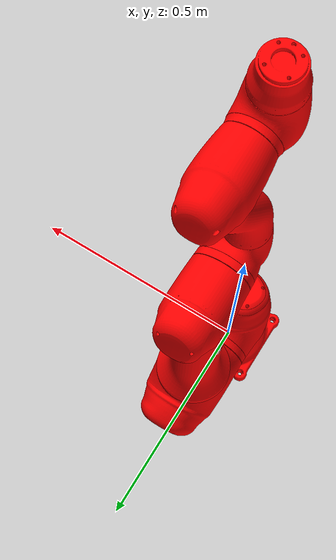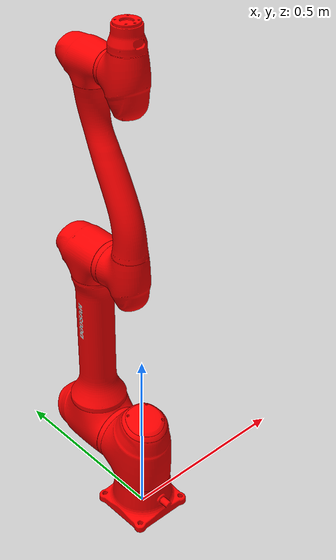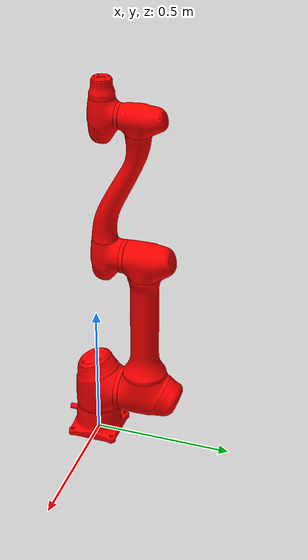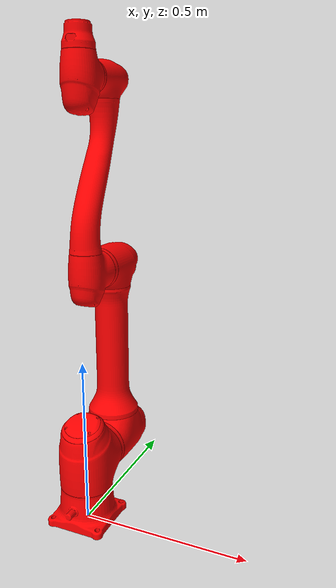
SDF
<sdf version='1.7'>
  <model name='a0912'>
    <joint name='fixed_base' type='fixed'>
      <parent>world</parent>
      <child>base</child>
    </joint>
    <link name='base'>
      <inertial>
        <pose>-1.2e-05 -6e-05 0.050723 0 -0 0</pose>
        <mass>3.722</mass>
        <inertia>
          <ixx>0.011</ixx>
          <ixy>-7.19e-06</ixy>
          <ixz>-1.94e-06</ixz>
          <iyy>0.011</iyy>
          <iyz>4.9e-06</iyz>
          <izz>0.014</izz>
        </inertia>
      </inertial>
      <visual name='base_link_visual'>
        <pose>0 0 0 0 -0 0</pose>
        <geometry>
          <mesh>
            <scale>0.001 0.001 0.001</scale>
            <uri>model://a0912/meshes/A0912_0_0.dae</uri>
          </mesh>
        </geometry>
      </visual>
    </link>
    <joint name='joint_1' type='revolute'>
      <pose relative_to='base'>0 0 0.195 0 -0 0</pose>
      <parent>base</parent>
      <child>link_1</child>
      <axis>
        <xyz>0 0 1</xyz>
        <limit>
          <lower>-2.617</lower>
          <upper>2.617</upper>
          <effort>30</effort>
          <velocity>1.571</velocity>
        </limit>
        <dynamics>
          <spring_reference>0</spring_reference>
          <spring_stiffness>0</spring_stiffness>
        </dynamics>
      </axis>
    </joint>
    <link name='link_1'>
      <pose relative_to='joint_1'>0 0 0 0 -0 0</pose>
      <inertial>
        <pose>7e-05 0.044281 0.143327 0 -0 0</pose>
        <mass>7.446</mass>
        <inertia>
          <ixx>0.039</ixx>
          <ixy>2.1e-05</ixy>
          <ixz>-3.61e-05</ixz>
          <iyy>0.023</iyy>
          <iyz>-0.003</iyz>
          <izz>0.039</izz>
        </inertia>
      </inertial>
      <visual name='link_1_visual'>
        <pose>0 0 0 0 -0 0</pose>
        <geometry>
          <mesh>
            <scale>0.001 0.001 0.001</scale>
            <uri>model://a0912/meshes/A0912_1_0.dae</uri>
          </mesh>
        </geometry>
      </visual>
      <visual name='link_1_visual_1'>
        <pose>0 0 0 0 -0 0</pose>
        <geometry>
          <mesh>
            <scale>0.001 0.001 0.001</scale>
            <uri>model://a0912/meshes/A0912_1_1.dae</uri>
          </mesh>
        </geometry>
      </visual>
      <visual name='link_1_visual_2'>
        <pose>0 0 0 0 -0 0</pose>
        <geometry>
          <mesh>
            <scale>0.001 0.001 0.001</scale>
            <uri>model://a0912/meshes/A0912_1_2.dae</uri>
          </mesh>
        </geometry>
      </visual>
    </link>
    <joint name='joint_2' type='revolute'>
      <pose relative_to='link_1'>0 0.039 0 3.14159 -1.57059 1.57059</pose>
      <parent>link_1</parent>
      <child>link_2</child>
      <axis>
        <xyz>0 0 1</xyz>
        <limit>
          <lower>-2.617</lower>
          <upper>2.617</upper>
          <effort>30</effort>
          <velocity>1.571</velocity>
        </limit>
        <dynamics>
          <spring_reference>0</spring_reference>
          <spring_stiffness>0</spring_stiffness>
        </dynamics>
      </axis>
    </joint>
    <link name='link_2'>
      <pose relative_to='joint_2'>0 0 0 0 -0 0</pose>
      <inertial>
        <pose>-1.6e-05 0.189372 0.418558 0 -0 0</pose>
        <mass>10.569</mass>
        <inertia>
          <ixx>0.82</ixx>
          <ixy>1.19e-05</ixy>
          <ixz>-0.000263</ixz>
          <iyy>0.82</iyy>
          <iyz>-0.008</iyz>
          <izz>0.031</izz>
        </inertia>
      </inertial>
      <visual name='link_2_visual'>
        <pose>0 0 0 0 -0 0</pose>
        <geometry>
          <mesh>
            <scale>0.001 0.001 0.001</scale>
            <uri>model://a0912/meshes/A0912_2_0.dae</uri>
          </mesh>
        </geometry>
      </visual>
      <visual name='link_2_visual_1'>
        <pose>0 0 0 0 -0 0</pose>
        <geometry>
          <mesh>
            <scale>0.001 0.001 0.001</scale>
            <uri>model://a0912/meshes/A0912_2_1.dae</uri>
          </mesh>
        </geometry>
      </visual>
      <visual name='link_2_visual_2'>
        <pose>0 0 0 0 -0 0</pose>
        <geometry>
          <mesh>
            <scale>0.001 0.001 0.001</scale>
            <uri>model://a0912/meshes/A0912_2_2.dae</uri>
          </mesh>
        </geometry>
      </visual>
    </link>
    <joint name='joint_3' type='revolute'>
      <pose relative_to='link_2'>0.56 0 0 0 -0 1.571</pose>
      <parent>link_2</parent>
      <child>link_3</child>
      <axis>
        <xyz>0 0 1</xyz>
        <limit>
          <lower>-2.617</lower>
          <upper>2.617</upper>
          <effort>30</effort>
          <velocity>1.571</velocity>
        </limit>
        <dynamics>
          <spring_reference>0</spring_reference>
          <spring_stiffness>0</spring_stiffness>
        </dynamics>
      </axis>
    </joint>
    <link name='link_3'>
      <pose relative_to='joint_3'>0 0 0 0 -0 0</pose>
      <inertial>
        <pose>6e-06 0.07917 0.781807 0 -0 0</pose>
        <mass>3.614</mass>
        <inertia>
          <ixx>0.012</ixx>
          <ixy>-4.38e-06</ixy>
          <ixz>-1.2e-06</ixz>
          <iyy>0.008</iyy>
          <iyz>0.002</iyz>
          <izz>0.011</izz>
        </inertia>
      </inertial>
      <visual name='link_3_visual'>
        <pose>0 0 0 0 -0 0</pose>
        <geometry>
          <mesh>
            <scale>0.001 0.001 0.001</scale>
            <uri>model://a0912/meshes/A0912_3_0.dae</uri>
          </mesh>
        </geometry>
      </visual>
      <visual name='link_3_visual_1'>
        <pose>0 0 0 0 -0 0</pose>
        <geometry>
          <mesh>
            <scale>0.001 0.001 0.001</scale>
            <uri>model://a0912/meshes/A0912_3_1.dae</uri>
          </mesh>
        </geometry>
      </visual>
    </link>
    <joint name='joint_4' type='revolute'>
      <pose relative_to='link_3'>0 -0.516 0 1.571 -0 0</pose>
      <parent>link_3</parent>
      <child>link_4</child>
      <axis>
        <xyz>0 0 1</xyz>
        <limit>
          <lower>-2.617</lower>
          <upper>2.617</upper>
          <effort>30</effort>
          <velocity>1.571</velocity>
        </limit>
        <dynamics>
          <spring_reference>0</spring_reference>
          <spring_stiffness>0</spring_stiffness>
        </dynamics>
      </axis>
    </joint>
    <link name='link_4'>
      <pose relative_to='joint_4'>0 0 0 0 -0 0</pose>
      <inertial>
        <pose>-2.1e-05 0.12337 1.148 0 -0 0</pose>
        <mass>3.785</mass>
        <inertia>
          <ixx>0.177</ixx>
          <ixy>-2.34e-06</ixy>
          <ixz>-4.92e-06</ixz>
          <iyy>0.161</iyy>
          <iyz>-0.05</iyz>
          <izz>0.022</izz>
        </inertia>
      </inertial>
      <visual name='link_4_visual'>
        <pose>0 0 0 0 -0 0</pose>
        <geometry>
          <mesh>
            <scale>0.001 0.001 0.001</scale>
            <uri>model://a0912/meshes/A0912_4_0.dae</uri>
          </mesh>
        </geometry>
      </visual>
      <visual name='link_4_visual_1'>
        <pose>0 0 0 0 -0 0</pose>
        <geometry>
          <mesh>
            <scale>0.001 0.001 0.001</scale>
            <uri>model://a0912/meshes/A0912_4_1.dae</uri>
          </mesh>
        </geometry>
      </visual>
    </link>
    <joint name='joint_5' type='revolute'>
      <pose relative_to='link_4'>0 0 0 -1.571 0 0</pose>
      <parent>link_4</parent>
      <child>link_5</child>
      <axis>
        <xyz>0 0 1</xyz>
        <limit>
          <lower>-2.617</lower>
          <upper>2.617</upper>
          <effort>30</effort>
          <velocity>1.571</velocity>
        </limit>
        <dynamics>
          <spring_reference>0</spring_reference>
          <spring_stiffness>0</spring_stiffness>
        </dynamics>
      </axis>
    </joint>
    <link name='link_5'>
      <pose relative_to='joint_5'>0 0 0 0 -0 0</pose>
      <inertial>
        <pose>-1.7e-05 0.06662 1.33103 0 -0 0</pose>
        <mass>2.598</mass>
        <inertia>
          <ixx>0.007</ixx>
          <ixy>-4.93e-06</ixy>
          <ixz>-5.57e-06</ixz>
          <iyy>0.004</iyy>
          <iyz>-6.64e-05</iyz>
          <izz>0.007</izz>
        </inertia>
      </inertial>
      <visual name='link_5_visual'>
        <pose>0 0 0 0 -0 0</pose>
        <geometry>
          <mesh>
            <scale>0.001 0.001 0.001</scale>
            <uri>model://a0912/meshes/A0912_5_0.dae</uri>
          </mesh>
        </geometry>
      </visual>
      <visual name='link_5_visual_1'>
        <pose>0 0 0 0 -0 0</pose>
        <geometry>
          <mesh>
            <scale>0.001 0.001 0.001</scale>
            <uri>model://a0912/meshes/A0912_5_1.dae</uri>
          </mesh>
        </geometry>
      </visual>
    </link>
    <joint name='joint_6' type='revolute'>
      <pose relative_to='link_5'>0 -0.124 0 1.571 -0 0</pose>
      <parent>link_5</parent>
      <child>link_6</child>
      <axis>
        <xyz>0 0 1</xyz>
        <limit>
          <lower>-2.617</lower>
          <upper>2.617</upper>
          <effort>30</effort>
          <velocity>1.571</velocity>
        </limit>
        <dynamics>
          <spring_reference>0</spring_reference>
          <spring_stiffness>0</spring_stiffness>
        </dynamics>
      </axis>
    </joint>
    <link name='link_6'>
      <pose relative_to='joint_6'>0 0 0 0 -0 0</pose>
      <inertial>
        <pose>-0.000174 0.034708 1.40022 0 -0 0</pose>
        <mass>1.128</mass>
        <inertia>
          <ixx>0.001</ixx>
          <ixy>-2.79e-06</ixy>
          <ixz>5.78e-06</ixz>
          <iyy>0.001</iyy>
          <iyz>-6.67e-06</iyz>
          <izz>0.001</izz>
        </inertia>
      </inertial>
      <visual name='link_6_visual'>
        <pose>0 0 0 0 -0 0</pose>
        <geometry>
          <mesh>
            <scale>0.001 0.001 0.001</scale>
            <uri>model://a0912/meshes/A0912_6_0.dae</uri>
          </mesh>
        </geometry>
      </visual>
    </link>
  </model>
</sdf>
